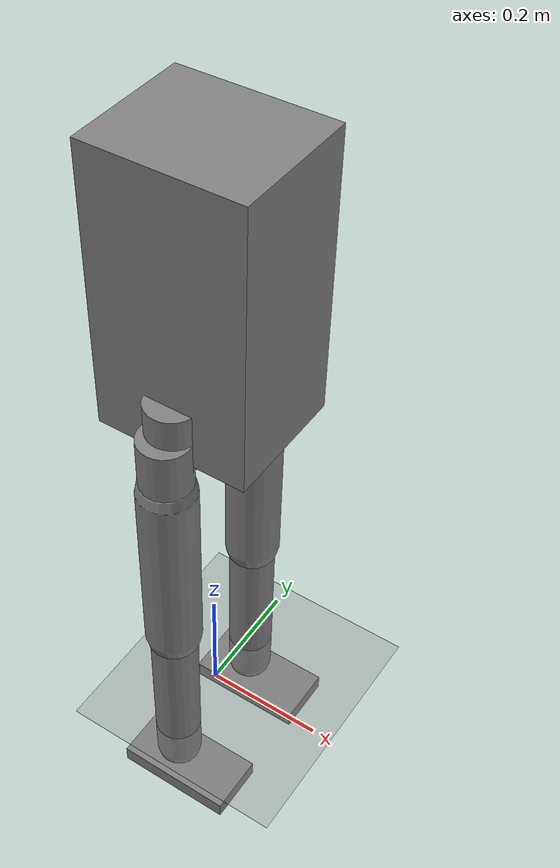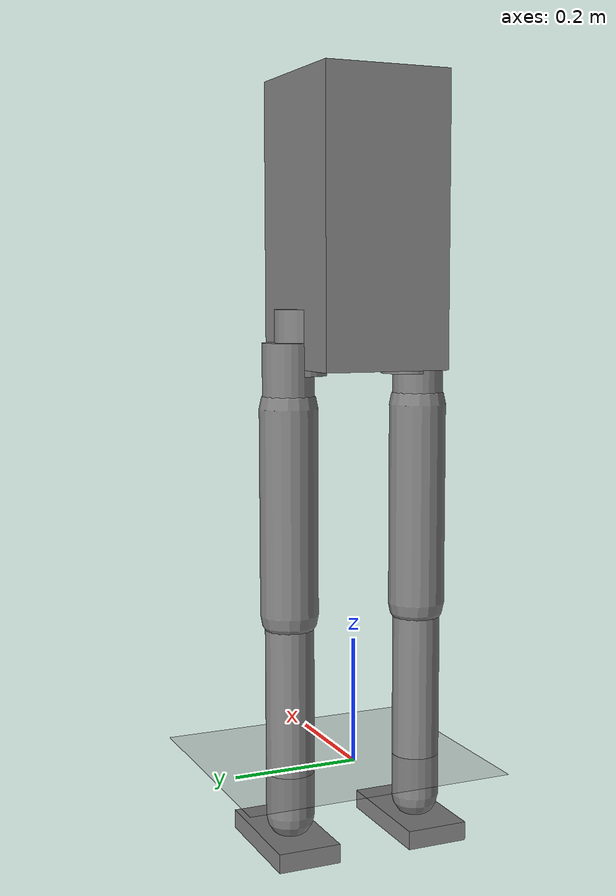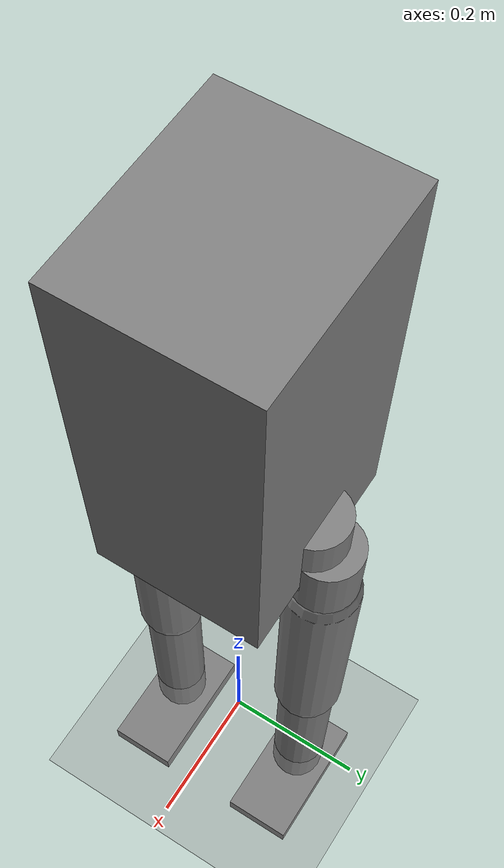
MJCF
<mujoco model="jackson_biped">
  <compiler angle="radian" coordinate="local" inertiafromgeom="true"/>
  <option integrator="Euler" timestep="0.002" gravity="0 0 -9.81"/>

  <default>
    <joint armature="0.01" damping="0.5" frictionloss="0.1"/>
    <geom contype="1" conaffinity="1" friction="0.8 0.1 0.1" density="1000"/>
    <motor gear="1"/>
  </default>

  <worldbody>
    <light directional="true" diffuse=".8 .8 .8" specular=".2 .2 .2" pos="0 0 5" dir="0 0 -1"/>
    <geom name="floor" type="plane" size="0 0 1" pos="0 0 0" contype="1" conaffinity="1" friction="1.0 0.1 0.1"/>

    <!-- Torso / Base Link -->
    <body name="torso" pos="0 0 0.85">
      <freejoint name="root_joint"/>
      <geom name="torso_geom" type="box" size="0.12 0.10 0.22" mass="12.0" pos="0 0 0"/>
      <site name="imu_site" pos="0 0 0"/>

      <!-- LEFT LEG -->
      <body name="left_hip_yaw_link" pos="0 0.09 -0.18">
        <joint name="left_HAA" axis="0 0 1" range="-0.52 0.52" damping="1.0"/>
        <geom type="cylinder" size="0.04 0.05" mass="1.2" pos="0 0 0"/>

        <body name="left_hip_roll_link" pos="0 0.02 -0.05">
          <joint name="left_HR" axis="1 0 0" range="-0.35 0.35" damping="1.0"/>
          <geom type="cylinder" size="0.04 0.05" mass="1.2" pos="0 0 0"/>

          <body name="left_thigh_link" pos="0 0 -0.05">
            <joint name="left_HFE" axis="0 1 0" range="-1.57 1.05" damping="1.5"/>
            <geom type="capsule" fromto="0 0 0 0 0 -0.32" size="0.045" mass="2.5"/>

            <body name="left_shin_link" pos="0 0 -0.32">
              <joint name="left_KFE" axis="0 1 0" range="0.0 2.09" damping="1.5"/>
              <geom type="capsule" fromto="0 0 0 0 0 -0.32" size="0.038" mass="1.8"/>

              <body name="left_ankle_pitch_link" pos="0 0 -0.32">
                <joint name="left_FFE" axis="0 1 0" range="-0.87 0.52" damping="0.8"/>
                <geom type="sphere" size="0.03" mass="0.4"/>

                <body name="left_faa" pos="0 0 -0.03">
                  <joint name="left_FAA" axis="1 0 0" range="-0.35 0.35" damping="0.8"/>
                  <geom name="left_foot_geom" type="box" size="0.10 0.05 0.015" pos="0.02 0 -0.015" mass="0.6"/>
                  <site name="left_foot_contact_site" pos="0 0 -0.02"/>
                </body>
              </body>
            </body>
          </body>
        </body>
      </body>

      <!-- RIGHT LEG -->
      <body name="right_hip_yaw_link" pos="0 -0.09 -0.18">
        <joint name="right_HAA" axis="0 0 1" range="-0.52 0.52" damping="1.0"/>
        <geom type="cylinder" size="0.04 0.05" mass="1.2" pos="0 0 0"/>

        <body name="right_hip_roll_link" pos="0 -0.02 -0.05">
          <joint name="right_HR" axis="1 0 0" range="-0.35 0.35" damping="1.0"/>
          <geom type="cylinder" size="0.04 0.05" mass="1.2" pos="0 0 0"/>

          <body name="right_thigh_link" pos="0 0 -0.05">
            <joint name="right_HFE" axis="0 1 0" range="-1.57 1.05" damping="1.5"/>
            <geom type="capsule" fromto="0 0 0 0 0 -0.32" size="0.045" mass="2.5"/>

            <body name="right_shin_link" pos="0 0 -0.32">
              <joint name="right_KFE" axis="0 1 0" range="0.0 2.09" damping="1.5"/>
              <geom type="capsule" fromto="0 0 0 0 0 -0.32" size="0.038" mass="1.8"/>

              <body name="right_ankle_pitch_link" pos="0 0 -0.32">
                <joint name="right_FFE" axis="0 1 0" range="-0.87 0.52" damping="0.8"/>
                <geom type="sphere" size="0.03" mass="0.4"/>

                <body name="right_faa" pos="0 0 -0.03">
                  <joint name="right_FAA" axis="1 0 0" range="-0.35 0.35" damping="0.8"/>
                  <geom name="right_foot_geom" type="box" size="0.10 0.05 0.015" pos="0.02 0 -0.015" mass="0.6"/>
                  <site name="right_foot_contact_site" pos="0 0 -0.02"/>
                </body>
              </body>
            </body>
          </body>
        </body>
      </body>

    </body>
  </worldbody>

  <actuator>
    <motor name="left_HAA_motor" joint="left_HAA" gear="40"/>
    <motor name="left_HR_motor" joint="left_HR" gear="40"/>
    <motor name="left_HFE_motor" joint="left_HFE" gear="60"/>
    <motor name="left_KFE_motor" joint="left_KFE" gear="80"/>
    <motor name="left_FFE_motor" joint="left_FFE" gear="30"/>
    <motor name="left_FAA_motor" joint="left_FAA" gear="30"/>

    <motor name="right_HAA_motor" joint="right_HAA" gear="40"/>
    <motor name="right_HR_motor" joint="right_HR" gear="40"/>
    <motor name="right_HFE_motor" joint="right_HFE" gear="60"/>
    <motor name="right_KFE_motor" joint="right_KFE" gear="80"/>
    <motor name="right_FFE_motor" joint="right_FFE" gear="30"/>
    <motor name="right_FAA_motor" joint="right_FAA" gear="30"/>
  </actuator>

  <sensor>
    <touch name="left_foot_touch" site="left_foot_contact_site"/>
    <touch name="right_foot_touch" site="right_foot_contact_site"/>
    <gyro name="torso_gyro" site="imu_site"/>
    <accelerometer name="torso_accel" site="imu_site"/>
  </sensor>
</mujoco>
